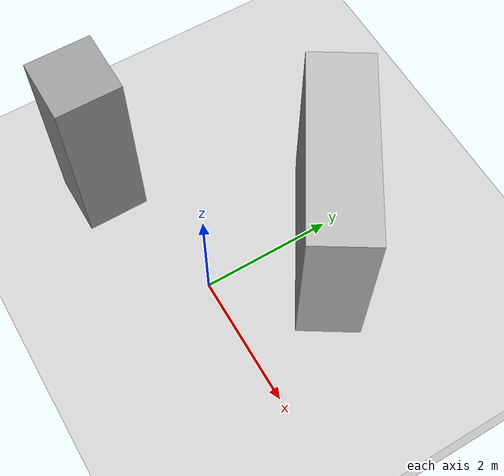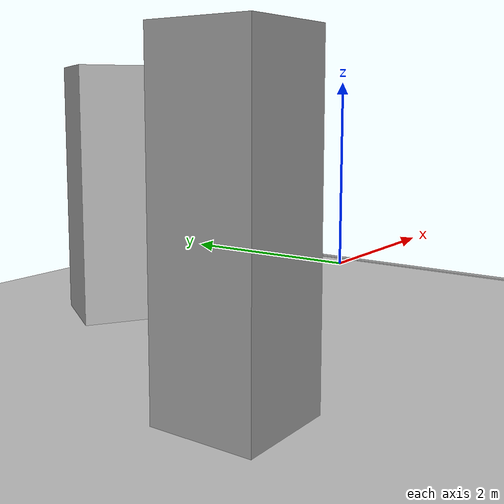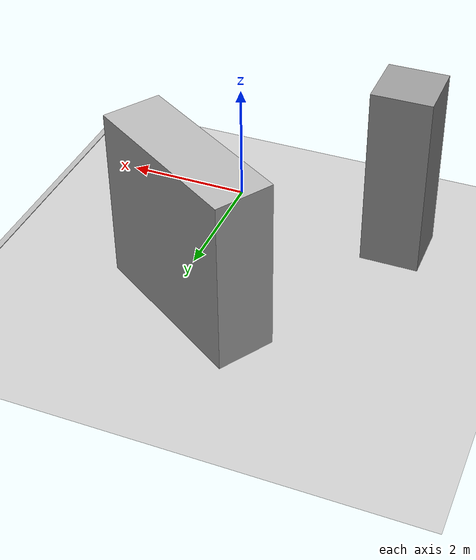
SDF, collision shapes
<?xml version='1.0'?>
<sdf version='1.6'>
  <model name='ground20x40'>
    <link name='link_0'>
      <inertial>
        <mass>3.2516</mass>
        <inertia>
          <ixx>3.13588</ixx>
          <ixy>0</ixy>
          <ixz>0</ixz>
          <iyy>3.13588</iyy>
          <iyz>0</iyz>
          <izz>0.541934</izz>
        </inertia>
        <pose frame=''>0 0 0 0 -0 0</pose>
      </inertial>
      <pose frame=''>-2.64455 -0.505676 0.78846 0 -0 0</pose>
      <gravity>1</gravity>
      <self_collide>0</self_collide>
      <kinematic>0</kinematic>
      <enable_wind>0</enable_wind>
      <visual name='visual'>
        <pose frame=''>0 0 0 0 -0 0</pose>
        <geometry>
          <box>
            <size>1 1 3.25161</size>
          </box>
        </geometry>
        <material>
          <lighting>1</lighting>
          <script>
            <uri>file://media/materials/scripts/gazebo.material</uri>
            <name>Gazebo/Grey</name>
          </script>
          <shader type='pixel'>
            <normal_map>__default__</normal_map>
          </shader>
          <ambient>0.3 0.3 0.3 1</ambient>
          <diffuse>0.7 0.7 0.7 1</diffuse>
          <specular>0.01 0.01 0.01 1</specular>
          <emissive>0 0 0 1</emissive>
        </material>
        <transparency>0</transparency>
        <cast_shadows>1</cast_shadows>
      </visual>
      <collision name='collision'>
        <laser_retro>0</laser_retro>
        <max_contacts>10</max_contacts>
        <pose frame=''>0 0 0 0 -0 0</pose>
        <geometry>
          <box>
            <size>1 1 3.25161</size>
          </box>
        </geometry>
        <surface>
          <friction>
            <ode>
              <mu>1</mu>
              <mu2>1</mu2>
              <fdir1>0 0 0</fdir1>
              <slip1>0</slip1>
              <slip2>0</slip2>
            </ode>
            <torsional>
              <coefficient>1</coefficient>
              <patch_radius>0</patch_radius>
              <surface_radius>0</surface_radius>
              <use_patch_radius>1</use_patch_radius>
              <ode>
                <slip>0</slip>
              </ode>
            </torsional>
          </friction>
          <bounce>
            <restitution_coefficient>0</restitution_coefficient>
            <threshold>1e+06</threshold>
          </bounce>
          <contact>
            <collide_without_contact>0</collide_without_contact>
            <collide_without_contact_bitmask>1</collide_without_contact_bitmask>
            <collide_bitmask>1</collide_bitmask>
            <ode>
              <soft_cfm>0</soft_cfm>
              <soft_erp>0.2</soft_erp>
              <kp>1e+13</kp>
              <kd>1</kd>
              <max_vel>0.01</max_vel>
              <min_depth>0</min_depth>
            </ode>
            <bullet>
              <split_impulse>1</split_impulse>
              <split_impulse_penetration_threshold>-0.01</split_impulse_penetration_threshold>
              <soft_cfm>0</soft_cfm>
              <soft_erp>0.2</soft_erp>
              <kp>1e+13</kp>
              <kd>1</kd>
            </bullet>
          </contact>
        </surface>
      </collision>
    </link>
    <model name='ground20x40'>
      <model name='brick_box_3x1x3'>
        <static>1</static>
        <link name='chassis'>
          <pose frame=''>0 0 1.5 0 -0 0</pose>
          <collision name='collision'>
            <geometry>
              <box>
                <size>3 1 3</size>
              </box>
            </geometry>
          </collision>
          <visual name='visual'>
            <geometry>
              <mesh>
                <uri>model://brick_box_3x1x3/meshes/simple_box.dae</uri>
                <scale>3 1 3</scale>
              </mesh>
            </geometry>
            <material>
              <script>
                <uri>model://brick_box_3x1x3/materials/scripts</uri>
                <uri>model://brick_box_3x1x3/materials/textures</uri>
                <name>BrickBox/Diffuse</name>
              </script>
            </material>
          </visual>
        </link>
        <pose frame=''>-2.63177 1.61869 0 0 0 -0.559933</pose>
      </model>
      <model name='my_ground_plane'>
        <static>1</static>
        <link name='link'>
          <collision name='collision'>
            <geometry>
              <plane>
                <normal>0 0 1</normal>
                <size>20 20</size>
              </plane>
            </geometry>
            <surface>
              <friction>
                <ode>
                  <mu>100</mu>
                  <mu2>50</mu2>
                </ode>
              </friction>
            </surface>
          </collision>
          <visual name='visual'>
            <cast_shadows>0</cast_shadows>
            <geometry>
              <plane>
                <normal>0 0 1</normal>
                <size>20 20</size>
              </plane>
            </geometry>
            <material>
              <script>
                <uri>model://ground20x20/materials/scripts</uri>
                <uri>model://ground20x20/materials/textures</uri>
                <name>WoodGround/Image</name>
              </script>
            </material>
          </visual>
        </link>
        <pose frame=''>-8.74604 -0.791798 0 0 -0 0</pose>
      </model>
      <model name='my_ground_plane_0'>
        <static>1</static>
        <link name='link'>
          <collision name='collision'>
            <geometry>
              <plane>
                <normal>0 0 1</normal>
                <size>20 20</size>
              </plane>
            </geometry>
            <surface>
              <friction>
                <ode>
                  <mu>100</mu>
                  <mu2>50</mu2>
                </ode>
              </friction>
            </surface>
          </collision>
          <visual name='visual'>
            <cast_shadows>0</cast_shadows>
            <geometry>
              <plane>
                <normal>0 0 1</normal>
                <size>20 20</size>
              </plane>
            </geometry>
            <material>
              <script>
                <uri>model://ground20x20/materials/scripts</uri>
                <uri>model://ground20x20/materials/textures</uri>
                <name>WoodGround/Image</name>
              </script>
            </material>
          </visual>
        </link>
        <pose frame=''>11 -0.826901 0 0 -0 0</pose>
      </model>
      <static>0</static>
      <allow_auto_disable>1</allow_auto_disable>
      <pose frame=''>2.64455 0.505676 -0.78846 0 -0 0</pose>
    </model>
    <static>0</static>
    <allow_auto_disable>1</allow_auto_disable>
  </model>
</sdf>
